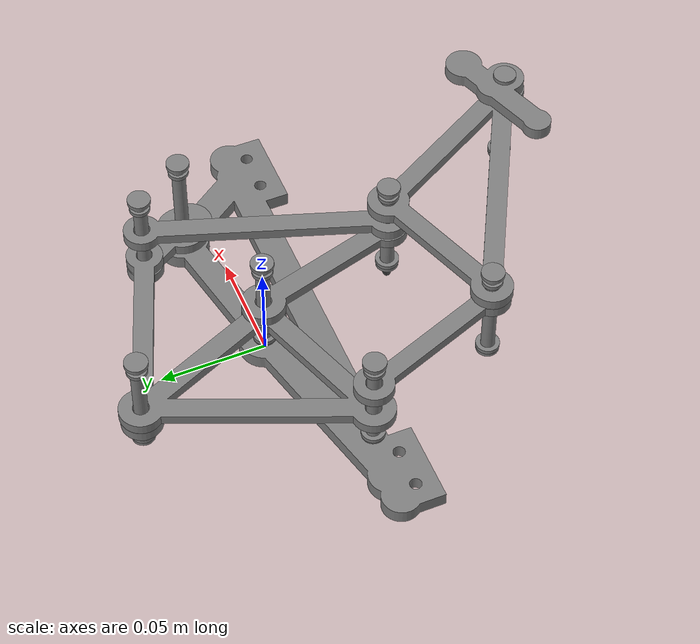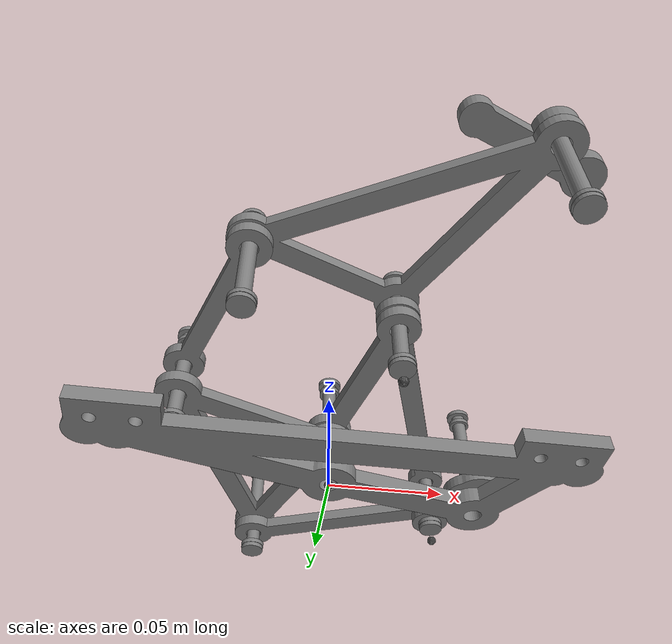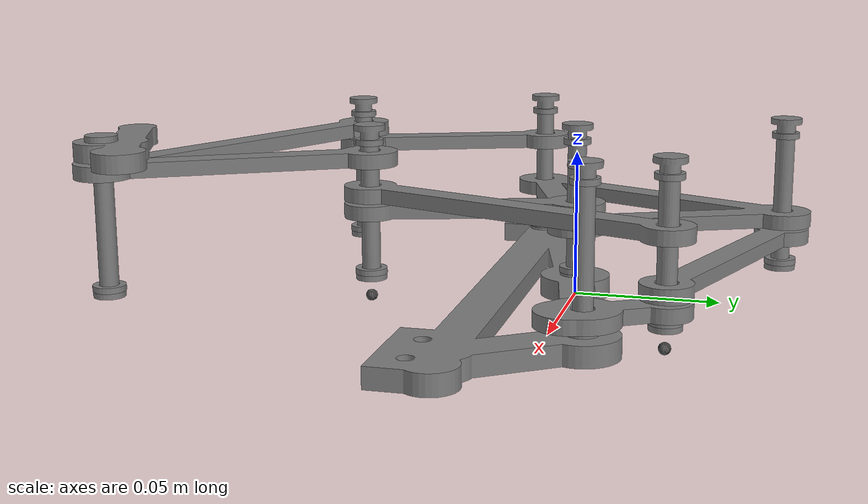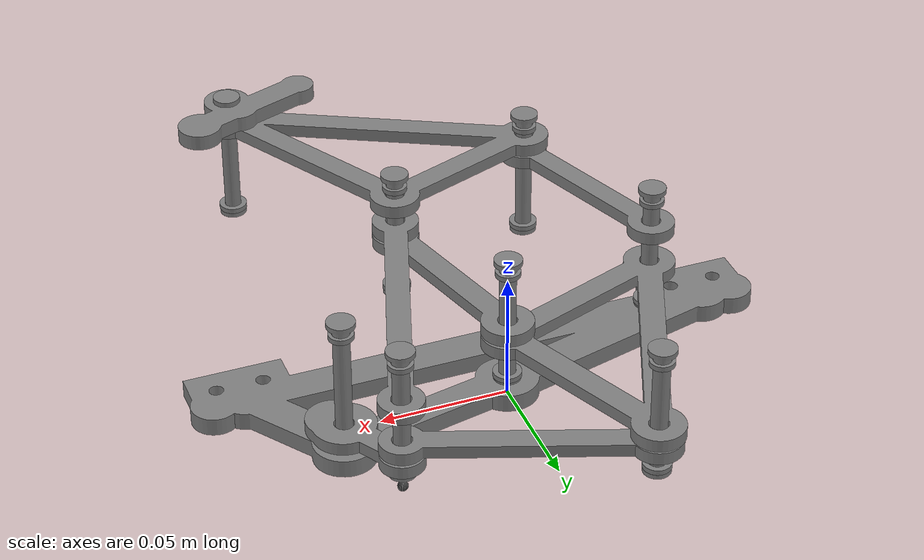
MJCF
<?xml version='1.0' encoding='utf-8'?>
<mujoco model="asm.jansen.ex4"><compiler angle="radian" coordinate="local" /><asset><mesh name="mesh_part_jansen_bushing" file="meshes/mesh_part_jansen_bushing.obj" scale="0.001 0.001 0.001" /><mesh name="mesh_part_jansen_drive_crank" file="meshes/mesh_part_jansen_drive_crank.obj" scale="0.001 0.001 0.001" /><mesh name="mesh_part_jansen_foot" file="meshes/mesh_part_jansen_foot.obj" scale="0.001 0.001 0.001" /><mesh name="mesh_part_jansen_foot_triangle" file="meshes/mesh_part_jansen_foot_triangle.obj" scale="0.001 0.001 0.001" /><mesh name="mesh_part_jansen_frame" file="meshes/mesh_part_jansen_frame.obj" scale="0.001 0.001 0.001" /><mesh name="mesh_part_jansen_lower_coupler" file="meshes/mesh_part_jansen_lower_coupler.obj" scale="0.001 0.001 0.001" /><mesh name="mesh_part_jansen_lower_rocker" file="meshes/mesh_part_jansen_lower_rocker.obj" scale="0.001 0.001 0.001" /><mesh name="mesh_part_jansen_pin" file="meshes/mesh_part_jansen_pin.obj" scale="0.001 0.001 0.001" /><mesh name="mesh_part_jansen_spacer" file="meshes/mesh_part_jansen_spacer.obj" scale="0.001 0.001 0.001" /><mesh name="mesh_part_jansen_trailing_link" file="meshes/mesh_part_jansen_trailing_link.obj" scale="0.001 0.001 0.001" /><mesh name="mesh_part_jansen_upper_coupler" file="meshes/mesh_part_jansen_upper_coupler.obj" scale="0.001 0.001 0.001" /><mesh name="mesh_part_jansen_upper_triangle" file="meshes/mesh_part_jansen_upper_triangle.obj" scale="0.001 0.001 0.001" /></asset><option gravity="0 0 0" timestep="0.002" /><worldbody><geom name="geom_cmp_jansen_frame_01" type="mesh" mesh="mesh_part_jansen_frame" /><body name="body_cmp_jansen_drive_crank_01" pos="0.0684 0.01404 0" quat="0.497731039913 0 0 0.867331431408"><geom name="geom_cmp_jansen_drive_crank_01" type="mesh" mesh="mesh_part_jansen_drive_crank" /><site name="site_closure_jansen_closure_lower_coupler_to_crank_1" pos="0.027 0 0" quat="1 0 0 0" size="0.002" /><joint name="joint_joint_jansen_frame_to_crank" type="hinge" pos="0 0 0" axis="0 0 1" damping="1e-4" /></body><body name="body_cmp_jansen_upper_coupler_01" pos="0.054777754157 0.0373516798664 0" quat="0.176193782802 0 0 0.984355500265"><geom name="geom_cmp_jansen_upper_coupler_01" type="mesh" mesh="mesh_part_jansen_upper_coupler" /><joint name="joint_joint_jansen_crank_to_upper_coupler" type="hinge" pos="0 0 0" axis="0 0 1" damping="1e-4" /></body><body name="body_cmp_jansen_upper_triangle_01" pos="0 0 0" quat="0.549221909116 0 0 0.835676548999"><geom name="geom_cmp_jansen_upper_triangle_01" type="mesh" mesh="mesh_part_jansen_upper_triangle" /><site name="site_closure_jansen_closure_upper_triangle_to_frame_0" pos="0 0 0" quat="1 0 0 0" size="0.002" /><joint name="joint_joint_jansen_upper_coupler_to_upper_triangle" type="hinge" pos="0.0747 0 0" axis="0 0 1" damping="1e-4" /></body><body name="body_cmp_jansen_lower_rocker_01" pos="0 0 0" quat="0.796230799595 0 -0 -0.604992986552"><geom name="geom_cmp_jansen_lower_rocker_01" type="mesh" mesh="mesh_part_jansen_lower_rocker" /><site name="site_closure_jansen_closure_foot_triangle_to_lower_rocker_1" pos="0.07074 0 0" quat="1 0 0 0" size="0.002" /><joint name="joint_joint_jansen_frame_to_lower_rocker" type="hinge" pos="0 0 0" axis="0 0 1" damping="1e-4" /></body><body name="body_cmp_jansen_lower_coupler_01" pos="0.0189559836309 -0.0681529037135 0" quat="0.812865966422 0 0 0.582450788164"><geom name="geom_cmp_jansen_lower_coupler_01" type="mesh" mesh="mesh_part_jansen_lower_coupler" /><site name="site_closure_jansen_closure_lower_coupler_to_crank_0" pos="0.11142 1.38777878078e-17 0" quat="1 0 0 0" size="0.002" /><joint name="joint_joint_jansen_lower_rocker_to_lower_coupler" type="hinge" pos="0 0 0" axis="0 0 1" damping="1e-4" /></body><body name="body_cmp_jansen_trailing_link_01" pos="-0.0679803590061 -0.0242615578519 0" quat="0.821658421703 0 -0 -0.569980208468"><geom name="geom_cmp_jansen_trailing_link_01" type="mesh" mesh="mesh_part_jansen_trailing_link" /><joint name="joint_joint_jansen_upper_triangle_to_trailing" type="hinge" pos="0 0 0" axis="0 0 1" damping="1e-4" /></body><body name="body_cmp_jansen_foot_triangle_01" pos="0.0189559836309 -0.0681529037135 0" quat="-0.173192878509 0 0 0.984887926027"><geom name="geom_cmp_jansen_foot_triangle_01" type="mesh" mesh="mesh_part_jansen_foot_triangle" /><site name="site_closure_jansen_closure_foot_triangle_to_lower_rocker_0" pos="0 0 0" quat="1 0 0 0" size="0.002" /><joint name="joint_joint_jansen_trailing_to_foot_triangle" type="hinge" pos="0.06606 1.38777878078e-17 0" axis="0 0 1" damping="1e-4" /></body><body name="body_cmp_jansen_foot_01" pos="0.0617744672144 -0.145262030693 0" quat="-0.173192878509 0 0 0.984887926027"><geom name="geom_cmp_jansen_foot_01" type="mesh" mesh="mesh_part_jansen_foot" /><joint name="joint_joint_jansen_foot_triangle_to_foot" type="hinge" pos="0 0 0" axis="0 0 1" damping="1e-4" /></body><body name="body_cmp_jansen_hardware_pin_left_frame" pos="0 0 0" quat="1 0 0 0"><geom name="geom_cmp_jansen_hardware_pin_left_frame" type="mesh" mesh="mesh_part_jansen_pin" /><joint name="joint_cst_jansen_hardware_pin_left_frame" type="hinge" pos="0 0 0" axis="0 0 1" damping="1e-4" /></body><body name="body_cmp_jansen_hardware_bushing_left_frame" pos="0 0 0" quat="1 0 0 0"><geom name="geom_cmp_jansen_hardware_bushing_left_frame" type="mesh" mesh="mesh_part_jansen_bushing" /><joint name="joint_cst_jansen_hardware_bushing_left_frame" type="hinge" pos="0 0 0" axis="0 0 1" damping="1e-4" /></body><body name="body_cmp_jansen_hardware_spacer_left_frame" pos="0 0 0" quat="1 0 0 0"><geom name="geom_cmp_jansen_hardware_spacer_left_frame" type="mesh" mesh="mesh_part_jansen_spacer" /><joint name="joint_cst_jansen_hardware_spacer_left_frame" type="hinge" pos="0 0 0" axis="0 0 1" damping="1e-4" /></body><body name="body_cmp_jansen_hardware_pin_drive_frame" pos="0.0684 0.01404 0" quat="1 0 0 0"><geom name="geom_cmp_jansen_hardware_pin_drive_frame" type="mesh" mesh="mesh_part_jansen_pin" /><joint name="joint_cst_jansen_hardware_pin_drive_frame" type="hinge" pos="0 0 0" axis="0 0 1" damping="1e-4" /></body><body name="body_cmp_jansen_hardware_bushing_drive_frame" pos="0.0684 0.01404 0" quat="1 0 0 0"><geom name="geom_cmp_jansen_hardware_bushing_drive_frame" type="mesh" mesh="mesh_part_jansen_bushing" /><joint name="joint_cst_jansen_hardware_bushing_drive_frame" type="hinge" pos="0 0 0" axis="0 0 1" damping="1e-4" /></body><body name="body_cmp_jansen_hardware_spacer_drive_frame" pos="0.0684 0.01404 0" quat="1 0 0 0"><geom name="geom_cmp_jansen_hardware_spacer_drive_frame" type="mesh" mesh="mesh_part_jansen_spacer" /><joint name="joint_cst_jansen_hardware_spacer_drive_frame" type="hinge" pos="0 0 0" axis="0 0 1" damping="1e-4" /></body><body name="body_cmp_jansen_hardware_pin_crank_node" pos="0.054777754157 0.0373516798664 0" quat="0.497731039913 0 0 0.867331431408"><geom name="geom_cmp_jansen_hardware_pin_crank_node" type="mesh" mesh="mesh_part_jansen_pin" /><joint name="joint_cst_jansen_hardware_pin_crank_node" type="hinge" pos="0 0 0" axis="0 0 1" damping="1e-4" /></body><body name="body_cmp_jansen_hardware_bushing_crank_node" pos="0.054777754157 0.0373516798664 0" quat="0.497731039913 0 0 0.867331431408"><geom name="geom_cmp_jansen_hardware_bushing_crank_node" type="mesh" mesh="mesh_part_jansen_bushing" /><joint name="joint_cst_jansen_hardware_bushing_crank_node" type="hinge" pos="0 0 0" axis="0 0 1" damping="1e-4" /></body><body name="body_cmp_jansen_hardware_spacer_crank_node" pos="0.054777754157 0.0373516798664 0" quat="0.497731039913 0 0 0.867331431408"><geom name="geom_cmp_jansen_hardware_spacer_crank_node" type="mesh" mesh="mesh_part_jansen_spacer" /><joint name="joint_cst_jansen_hardware_spacer_crank_node" type="hinge" pos="0 0 0" axis="0 0 1" damping="1e-4" /></body><body name="body_cmp_jansen_hardware_pin_upper_node" pos="-0.0296342810053 0.0685703973249 0" quat="0.176193782802 0 0 0.984355500265"><geom name="geom_cmp_jansen_hardware_pin_upper_node" type="mesh" mesh="mesh_part_jansen_pin" /><joint name="joint_cst_jansen_hardware_pin_upper_node" type="hinge" pos="0 0 0" axis="0 0 1" damping="1e-4" /></body><body name="body_cmp_jansen_hardware_bushing_upper_node" pos="-0.0296342810053 0.0685703973249 0" quat="0.176193782802 0 0 0.984355500265"><geom name="geom_cmp_jansen_hardware_bushing_upper_node" type="mesh" mesh="mesh_part_jansen_bushing" /><joint name="joint_cst_jansen_hardware_bushing_upper_node" type="hinge" pos="0 0 0" axis="0 0 1" damping="1e-4" /></body><body name="body_cmp_jansen_hardware_spacer_upper_node" pos="-0.0296342810053 0.0685703973249 0" quat="0.176193782802 0 0 0.984355500265"><geom name="geom_cmp_jansen_hardware_spacer_upper_node" type="mesh" mesh="mesh_part_jansen_spacer" /><joint name="joint_cst_jansen_hardware_spacer_upper_node" type="hinge" pos="0 0 0" axis="0 0 1" damping="1e-4" /></body><body name="body_cmp_jansen_hardware_pin_rear_node" pos="-0.0679803590061 -0.0242615578519 0" quat="0.549221909116 0 0 0.835676548999"><geom name="geom_cmp_jansen_hardware_pin_rear_node" type="mesh" mesh="mesh_part_jansen_pin" /><joint name="joint_cst_jansen_hardware_pin_rear_node" type="hinge" pos="0 0 0" axis="0 0 1" damping="1e-4" /></body><body name="body_cmp_jansen_hardware_bushing_rear_node" pos="-0.0679803590061 -0.0242615578519 0" quat="0.549221909116 0 0 0.835676548999"><geom name="geom_cmp_jansen_hardware_bushing_rear_node" type="mesh" mesh="mesh_part_jansen_bushing" /><joint name="joint_cst_jansen_hardware_bushing_rear_node" type="hinge" pos="0 0 0" axis="0 0 1" damping="1e-4" /></body><body name="body_cmp_jansen_hardware_spacer_rear_node" pos="-0.0679803590061 -0.0242615578519 0" quat="0.549221909116 0 0 0.835676548999"><geom name="geom_cmp_jansen_hardware_spacer_rear_node" type="mesh" mesh="mesh_part_jansen_spacer" /><joint name="joint_cst_jansen_hardware_spacer_rear_node" type="hinge" pos="0 0 0" axis="0 0 1" damping="1e-4" /></body><body name="body_cmp_jansen_hardware_pin_lower_node" pos="0.0189559836309 -0.0681529037135 0" quat="0.796230799595 0 -0 -0.604992986552"><geom name="geom_cmp_jansen_hardware_pin_lower_node" type="mesh" mesh="mesh_part_jansen_pin" /><joint name="joint_cst_jansen_hardware_pin_lower_node" type="hinge" pos="0 0 0" axis="0 0 1" damping="1e-4" /></body><body name="body_cmp_jansen_hardware_bushing_lower_node" pos="0.0189559836309 -0.0681529037135 0" quat="0.796230799595 0 -0 -0.604992986552"><geom name="geom_cmp_jansen_hardware_bushing_lower_node" type="mesh" mesh="mesh_part_jansen_bushing" /><joint name="joint_cst_jansen_hardware_bushing_lower_node" type="hinge" pos="0 0 0" axis="0 0 1" damping="1e-4" /></body><body name="body_cmp_jansen_hardware_spacer_lower_node" pos="0.0189559836309 -0.0681529037135 0" quat="0.796230799595 0 -0 -0.604992986552"><geom name="geom_cmp_jansen_hardware_spacer_lower_node" type="mesh" mesh="mesh_part_jansen_spacer" /><joint name="joint_cst_jansen_hardware_spacer_lower_node" type="hinge" pos="0 0 0" axis="0 0 1" damping="1e-4" /></body><body name="body_cmp_jansen_hardware_pin_foot_rear" pos="-0.0431409748184 -0.0906893486716 0" quat="0.821658421703 0 -0 -0.569980208468"><geom name="geom_cmp_jansen_hardware_pin_foot_rear" type="mesh" mesh="mesh_part_jansen_pin" /><joint name="joint_cst_jansen_hardware_pin_foot_rear" type="hinge" pos="0 0 0" axis="0 0 1" damping="1e-4" /></body><body name="body_cmp_jansen_hardware_bushing_foot_rear" pos="-0.0431409748184 -0.0906893486716 0" quat="0.821658421703 0 -0 -0.569980208468"><geom name="geom_cmp_jansen_hardware_bushing_foot_rear" type="mesh" mesh="mesh_part_jansen_bushing" /><joint name="joint_cst_jansen_hardware_bushing_foot_rear" type="hinge" pos="0 0 0" axis="0 0 1" damping="1e-4" /></body><body name="body_cmp_jansen_hardware_spacer_foot_rear" pos="-0.0431409748184 -0.0906893486716 0" quat="0.821658421703 0 -0 -0.569980208468"><geom name="geom_cmp_jansen_hardware_spacer_foot_rear" type="mesh" mesh="mesh_part_jansen_spacer" /><joint name="joint_cst_jansen_hardware_spacer_foot_rear" type="hinge" pos="0 0 0" axis="0 0 1" damping="1e-4" /></body><body name="body_cmp_jansen_hardware_pin_foot_tip" pos="0.0617744672144 -0.145262030693 0" quat="-0.173192878509 0 0 0.984887926027"><geom name="geom_cmp_jansen_hardware_pin_foot_tip" type="mesh" mesh="mesh_part_jansen_pin" /><joint name="joint_cst_jansen_hardware_pin_foot_tip" type="hinge" pos="0 0 0" axis="0 0 1" damping="1e-4" /></body><body name="body_cmp_jansen_hardware_bushing_foot_tip" pos="0.0617744672144 -0.145262030693 0" quat="-0.173192878509 0 0 0.984887926027"><geom name="geom_cmp_jansen_hardware_bushing_foot_tip" type="mesh" mesh="mesh_part_jansen_bushing" /><joint name="joint_cst_jansen_hardware_bushing_foot_tip" type="hinge" pos="0 0 0" axis="0 0 1" damping="1e-4" /></body><body name="body_cmp_jansen_hardware_spacer_foot_tip" pos="0.0617744672144 -0.145262030693 0" quat="-0.173192878509 0 0 0.984887926027"><geom name="geom_cmp_jansen_hardware_spacer_foot_tip" type="mesh" mesh="mesh_part_jansen_spacer" /><joint name="joint_cst_jansen_hardware_spacer_foot_tip" type="hinge" pos="0 0 0" axis="0 0 1" damping="1e-4" /></body><site name="site_closure_jansen_closure_upper_triangle_to_frame_1" pos="0 0 0" quat="1 0 0 0" size="0.002" /></worldbody><equality><connect name="eq_closure_jansen_closure_upper_triangle_to_frame" site1="site_closure_jansen_closure_upper_triangle_to_frame_0" site2="site_closure_jansen_closure_upper_triangle_to_frame_1" /><connect name="eq_closure_jansen_closure_lower_coupler_to_crank" site1="site_closure_jansen_closure_lower_coupler_to_crank_0" site2="site_closure_jansen_closure_lower_coupler_to_crank_1" /><connect name="eq_closure_jansen_closure_foot_triangle_to_lower_rocker" site1="site_closure_jansen_closure_foot_triangle_to_lower_rocker_0" site2="site_closure_jansen_closure_foot_triangle_to_lower_rocker_1" /></equality></mujoco>
